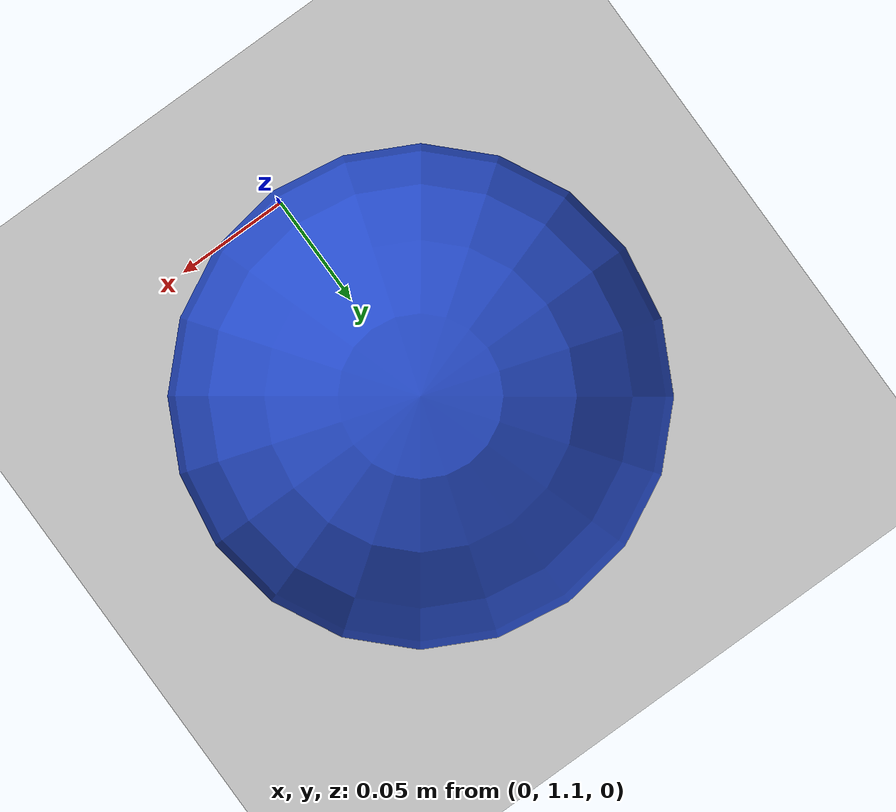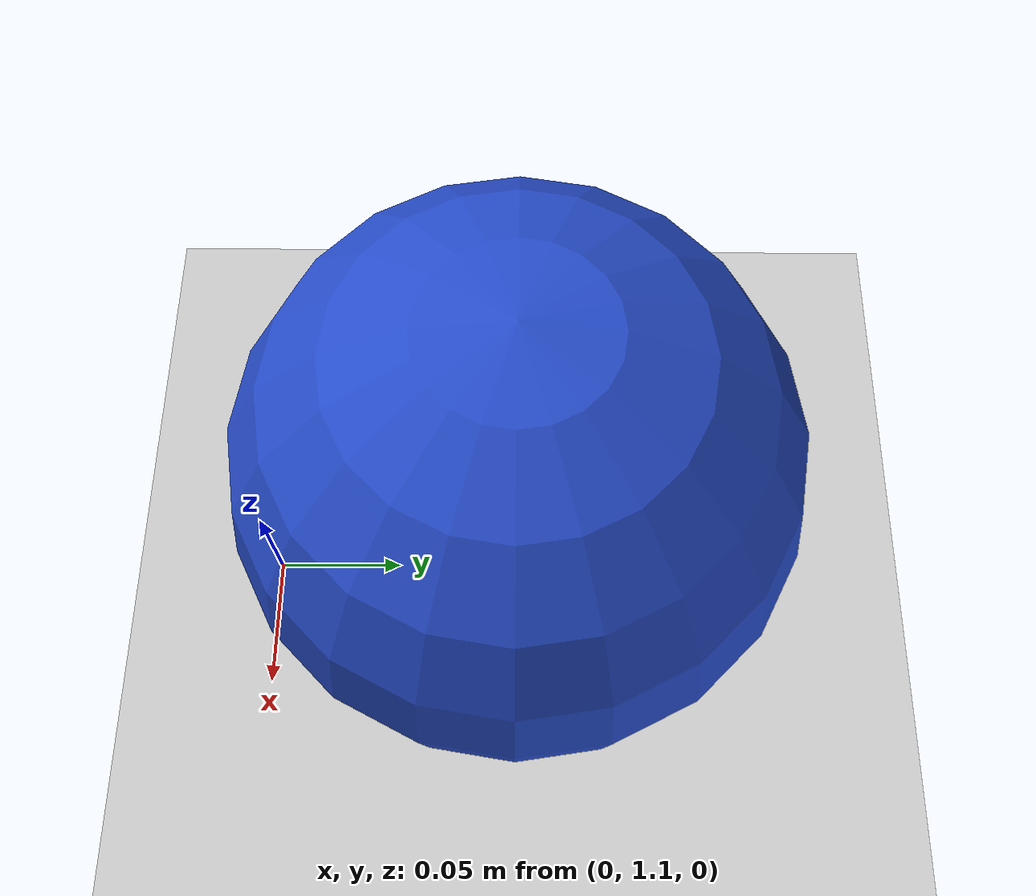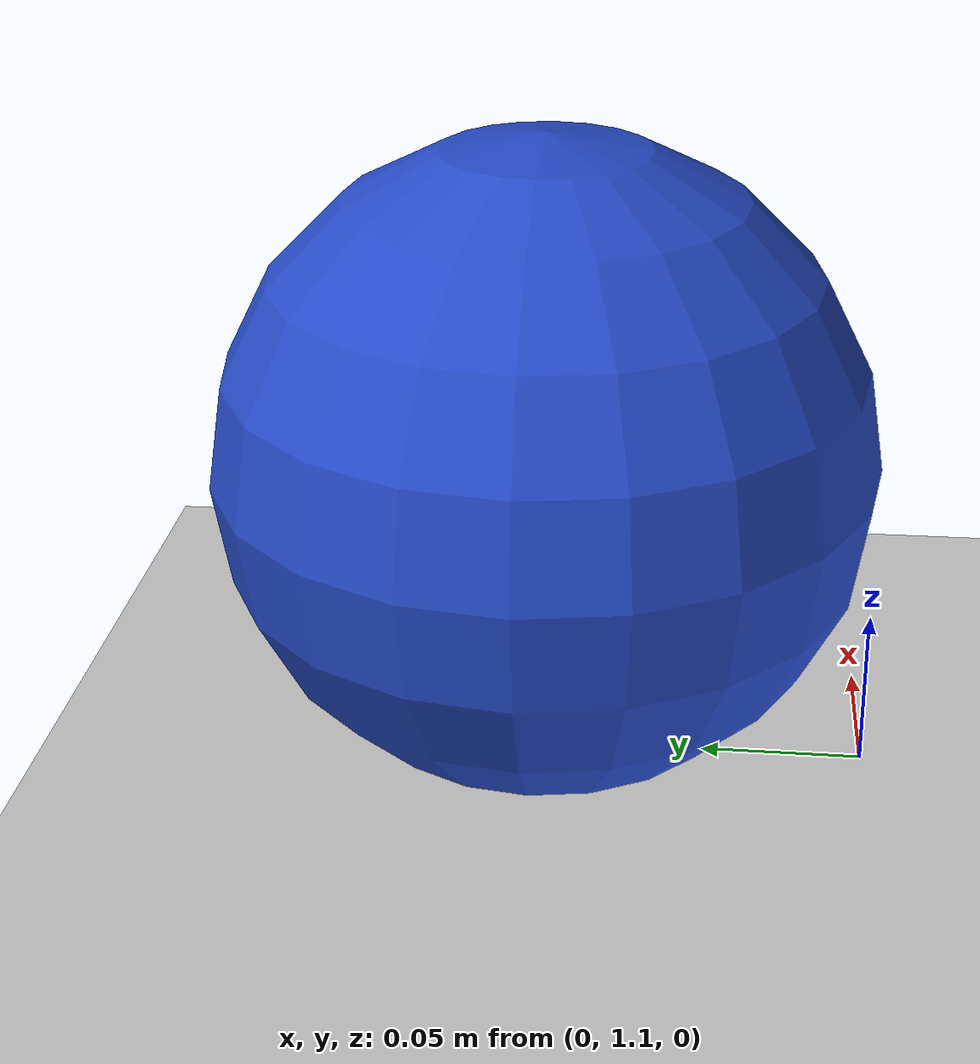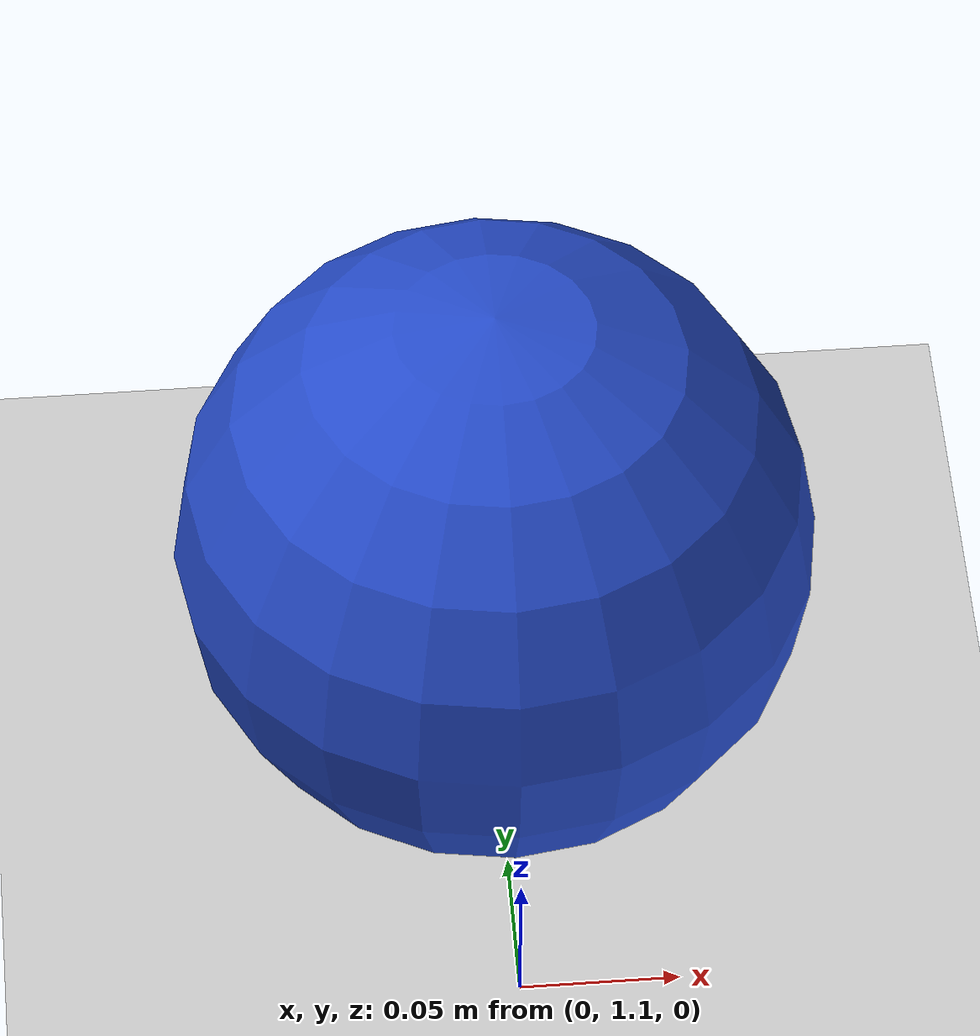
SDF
<?xml version="1.0" ?>
<sdf version="1.4">
  <world name="default">
    <scene>
      <ambient>0.5 0.5 0.5 1</ambient>
      <background>0.5 0.5 0.5 1</background>
      <shadows>false</shadows>
    </scene>
    <include>
      <uri>model://sun</uri>
    </include>
    <include>
      <uri>model://ground_plane</uri>
    </include>
    <physics type="ode">
      <gravity>0.0 0.0 -10.0</gravity>
      <ode>
        <solver>
          <type>quick</type>
          <iters>100</iters>
          <sor>1.3</sor>
        </solver>
        <constraints>
          <cfm>0.0</cfm>
          <erp>1.0</erp>
          <contact_max_correcting_vel>10000.0</contact_max_correcting_vel>
          <contact_surface_layer>0.0</contact_surface_layer>
        </constraints>
      </ode>
      <real_time_update_rate>0</real_time_update_rate>
      <max_step_size>0.001</max_step_size>
    </physics>

    <model name="model_5_soft_contact">
      <pose>0.0 1.2 0.0 0 0.0 0.0</pose>
      <link name="link_1">
        <pose>0.0 0.0 0.0 0.0 0.0 0.0</pose>
        <inertial>
          <pose>0.0 0.0 0.05 0.0 0.0 0.0</pose>
          <inertia>
            <ixx>0.01</ixx>
            <ixy>0.0</ixy>
            <ixz>0.0</ixz>
            <iyy>0.01</iyy>
            <iyz>0.0</iyz>
            <izz>0.01</izz>
          </inertia>
          <mass>1.0</mass>
        </inertial>
        <visual name="visual_sphere">
          <pose>0.0 0.0 0.1 0.0 0.0 0.0</pose>
          <geometry>
            <sphere>
              <radius>0.1</radius>
            </sphere>
          </geometry>
          <material>
            <script><uri>file://media/materials/scripts/gazebo.material</uri><name>Gazebo/Blue</name></script>
          </material>
        </visual>
        <collision name="collision_sphere">
          <pose>0.0 0.0 0.1 0.0 0.0 0.0</pose>
          <max_contacts>250</max_contacts>
          <geometry>
            <sphere>
              <radius>0.1</radius>
            </sphere>
          </geometry>
          <surface>
            <friction>
              <ode>
                <mu>0.2</mu>
                <mu2>0.2</mu2>
                <fdir1>1.0 0 0</fdir1>
                <slip1>0</slip1>
                <slip2>0</slip2>
              </ode>
            </friction>
            <contact>
              <ode>
                <kp>111.1111</kp>
                <kd>0.0</kd>
                <max_vel>10000.0</max_vel>
                <min_depth>0.0</min_depth>
              </ode>
            </contact>
          </surface>
        </collision>
        <gravity>true</gravity>
        <self_collide>true</self_collide>
        <kinematic>false</kinematic>
      </link>
      <static>false</static>
    </model>
  </world>
</sdf>
